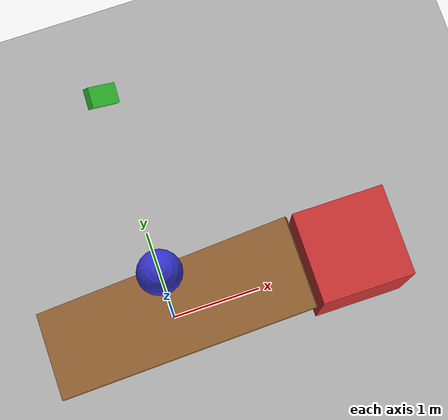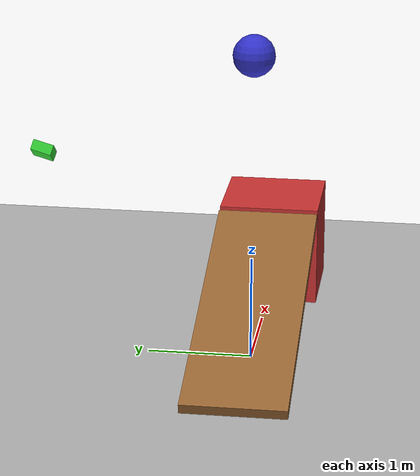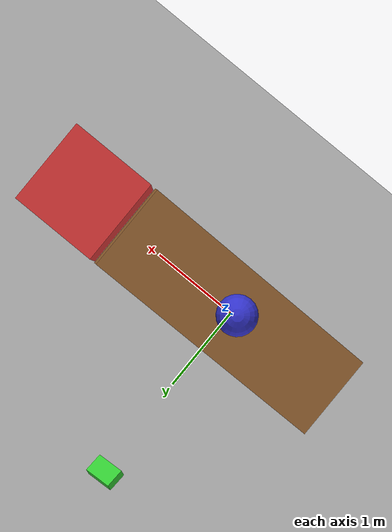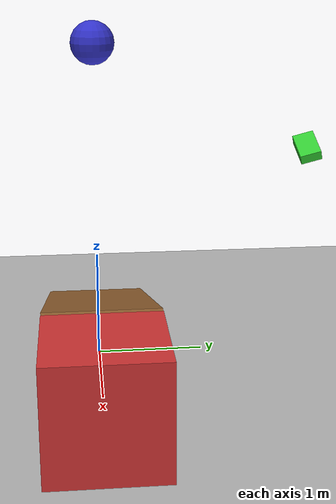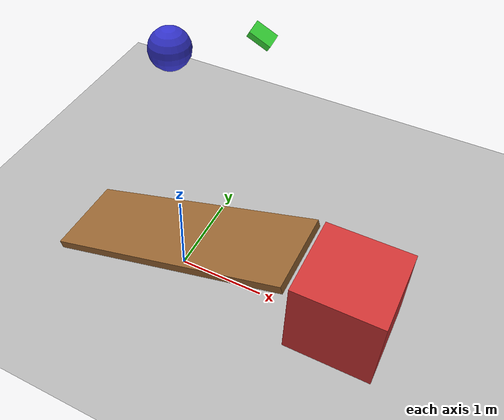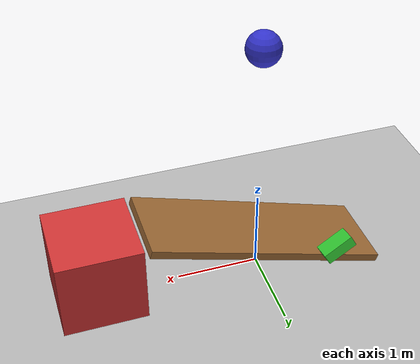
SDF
<?xml version="1.0"?>
<sdf version="1.8">
    <world name="basic_world">

        <!-- Physics configuration -->
        <physics name="1ms" type="ignored">
            <max_step_size>0.001</max_step_size>
            <real_time_factor>1.0</real_time_factor>
        </physics>

        <!-- Required plugins for Gazebo Sim -->
        <plugin filename="gz-sim-physics-system"
            name="gz::sim::systems::Physics">
        </plugin>
        <plugin filename="gz-sim-scene-broadcaster-system"
            name="gz::sim::systems::SceneBroadcaster">
        </plugin>
        <plugin filename="gz-sim-user-commands-system"
            name="gz::sim::systems::UserCommands">
        </plugin>
        <plugin filename="gz-sim-contact-system"
            name="gz::sim::systems::Contact">
        </plugin>

        <!-- Lighting -->
        <light type="directional" name="sun">
            <cast_shadows>true</cast_shadows>
            <pose>0 0 10 0 0 0</pose>
            <diffuse>0.8 0.8 0.8 1</diffuse>
            <specular>0.2 0.2 0.2 1</specular>
            <direction>-0.5 0.1 -0.9</direction>
        </light>

        <!-- Ground plane -->
        <model name="ground_plane">
            <static>true</static>
            <link name="link">
                <collision name="collision">
                    <geometry>
                        <plane>
                            <normal>0 0 1</normal>
                            <size>100 100</size>
                        </plane>
                    </geometry>
                    <surface>
                        <bounce>
                            <restitution_coefficient>0.9</restitution_coefficient>
                            <threshold>0.01</threshold>
                        </bounce>
                        <friction>
                            <ode>
                                <mu>1.0</mu>
                                <mu2>1.0</mu2>
                            </ode>
                        </friction>
                    </surface>
                </collision>
                <visual name="visual">
                    <geometry>
                        <plane>
                            <normal>0 0 1</normal>
                            <size>100 100</size>
                        </plane>
                    </geometry>
                    <material>
                        <ambient>0.3 0.3 0.3 1</ambient>
                        <diffuse>0.7 0.7 0.7 1</diffuse>
                    </material>
                </visual>
            </link>
        </model>

        <!-- Static obstacle -->
        <model name="static_box">
            <static>true</static>
            <pose>2 0 0.5 0 0 0</pose>  <!-- x y z roll pitch yaw -->
            <link name="link">
                <visual name="visual">
                    <geometry>
                        <box>
                            <size>1 1 1</size>  <!-- x y z dimensions in meters -->
                        </box>
                    </geometry>
                    <material>
                        <ambient>0.8 0.2 0.2 1</ambient>
                        <diffuse>0.8 0.2 0.2 1</diffuse>
                    </material>
                </visual>
                <collision name="collision">
                    <geometry>
                        <box>
                            <size>1 1 1</size>
                        </box>
                    </geometry>
                </collision>
            </link>
        </model>

        <!-- Dynamic falling sphere -->
        <model name="falling_ball">
            <pose>0 0 3 0 0 0</pose>  <!-- Start 3 meters up -->
            <link name="link">

                <!-- Mass properties - REQUIRED for dynamic objects -->
                <inertial>
                    <mass>1.0</mass>  <!-- 1 kg -->
                    <inertia>
                        <!-- Sphere inertia: I = (2/5) * m * r^2 -->
                        <!-- For m=1kg, r=0.2m: I = 0.4 * 1 * 0.04 = 0.016 -->
                        <ixx>0.016</ixx>
                        <ixy>0</ixy>
                        <ixz>0</ixz>
                        <iyy>0.016</iyy>
                        <iyz>0</iyz>
                        <izz>0.016</izz>
                    </inertia>
                </inertial>

                <visual name="visual">
                    <geometry>
                        <sphere>
                            <radius>0.2</radius>
                        </sphere>
                    </geometry>
                    <material>
                        <ambient>0.2 0.2 0.8 1</ambient>
                        <diffuse>0.2 0.2 0.8 1</diffuse>
                    </material>
                </visual>

                <collision name="collision">
                    <geometry>
                        <sphere>
                            <radius>0.2</radius>
                        </sphere>
                    </geometry>
                    <surface>
                        <bounce>
                            <restitution_coefficient>0.8</restitution_coefficient>  <!-- 0 = no
                            bounce, 1 = perfect bounce -->
                            <threshold>0.01</threshold>  <!-- Minimum velocity to trigger bounce -->
                        </bounce>
                        <friction>
                            <ode>
                                <mu>0.9</mu>
                                <mu2>0.9</mu2>
                            </ode>
                        </friction>
                        <contact>
                            <ode>
                                <max_vel>0.1</max_vel>
                                <min_depth>0.001</min_depth>
                            </ode>
                        </contact>
                    </surface>
                </collision>

            </link>
        </model>

        <!-- Dynamic tumbling box -->
        <model name="tumbling_box">
            <pose>0 2 2 0.3 0.5 0.1</pose>  <!-- Start tilted -->
            <link name="link">
                <inertial>
                    <mass>0.5</mass>
                    <!-- Box 0.3 x 0.2 x 0.1 m, mass 0.5 kg -->
                    <!-- Ixx = (1/12) * 0.5 * (0.2^2 + 0.1^2) = 0.00208 -->
                    <!-- Iyy = (1/12) * 0.5 * (0.3^2 + 0.1^2) = 0.00417 -->
                    <!-- Izz = (1/12) * 0.5 * (0.3^2 + 0.2^2) = 0.00542 -->
                    <inertia>
                        <ixx>0.00208</ixx>
                        <ixy>0</ixy>
                        <ixz>0</ixz>
                        <iyy>0.00417</iyy>
                        <iyz>0</iyz>
                        <izz>0.00542</izz>
                    </inertia>
                </inertial>
                <visual name="visual">
                    <geometry>
                        <box>
                            <size>0.3 0.2 0.1</size>
                        </box>
                    </geometry>
                    <material>
                        <ambient>0.2 0.8 0.2 1</ambient>
                        <diffuse>0.2 0.8 0.2 1</diffuse>
                    </material>
                </visual>
                <collision name="collision">
                    <geometry>
                        <box>
                            <size>0.3 0.2 0.1</size>
                        </box>
                    </geometry>
                </collision>
            </link>
        </model>

        <!-- Ramp to test friction -->
        <model name="ramp">
            <static>true</static>
            <pose>0 0 0.5 0 -0.3 0</pose>  <!-- Tilted 0.3 rad (~17 degrees) -->
            <link name="link">
                <visual name="visual">
                    <geometry>
                        <box>
                            <size>3 1 0.1</size>
                        </box>
                    </geometry>
                    <material>
                        <ambient>0.6 0.4 0.2 1</ambient>
                        <diffuse>0.6 0.4 0.2 1</diffuse>
                    </material>
                </visual>
                <collision name="collision">
                    <geometry>
                        <box>
                            <size>3 1 0.1</size>
                        </box>
                    </geometry>
                </collision>
            </link>
        </model>

    </world>
</sdf>
